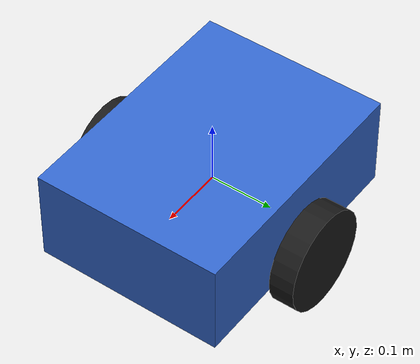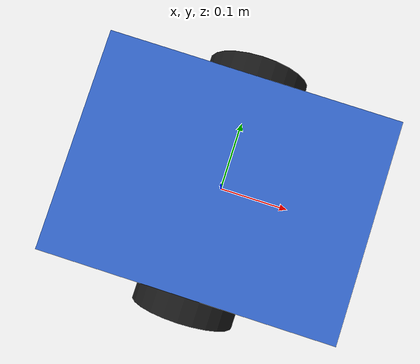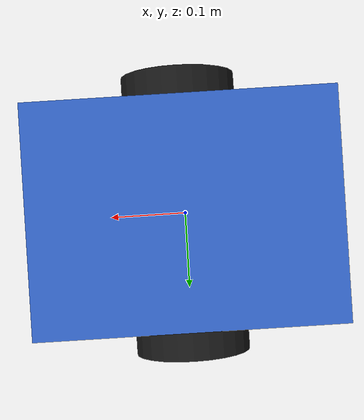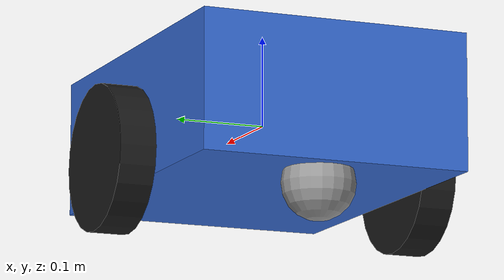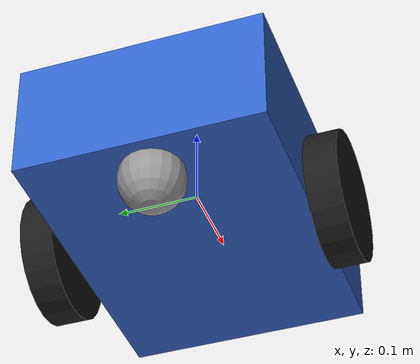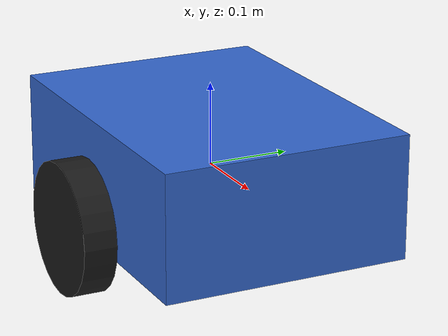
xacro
<?xml version="1.0"?>
<!-- URDF for Differential Robot -->
<robot name="diff_drive_bot" xmlns:xacro="http://www.ros.org/wiki/xacro">

<!-- Geometry and Constraints-->
<!-- Pi Constraint-->
<xacro:property name="pi_const" value="3.14159265"/>

<!-- Body dimensions -->
<xacro:property name="a" value="1.0"/>
<xacro:property name="b" value="1.0"/>
<xacro:property name="c" value="1.0"/>

<!-- Wheel and caster dimensions-->
<!-- Wheel and caster radius-->
<xacro:property name="r" value="0.15"/>
<!-- Wheel width-->
<xacro:property name="d" value="0.1"/>

<xacro:property name="s1" value="${b/2+r}"/>
<xacro:property name="s2" value="${2*r}"/>
<xacro:property name="s3" value="${2*r}"/>
<xacro:property name="s4" value="${c/2+d/2}"/>

<!-- Mass and inertia -->

<!-- Material density -->

  <!-- Base Link (Robot Chassis Center) -->
  <link name="base_link">
    <visual>
      <geometry>
        <box size="0.4 0.3 0.15"/>
      </geometry>
      <material name="chassis_color">
        <color rgba="0.2 0.4 0.8 1.0"/>
      </material>
    </visual>
    <collision>
      <geometry>
        <box size="0.4 0.3 0.15"/>
      </geometry>
    </collision>
    <inertial>
      <mass value="5.0"/>
      <inertia ixx="0.0468" ixy="0.0" ixz="0.0" iyy="0.0729" iyz="0.0" izz="0.1041"/>
    </inertial>
  </link>

  <!-- Left Wheel Link -->
  <link name="left_wheel">
    <visual>
      <geometry>
        <cylinder length="0.04" radius="0.08"/>
      </geometry>
      <material name="wheel_color">
        <color rgba="0.1 0.1 0.1 1.0"/>
      </material>
    </visual>
    <collision>
      <geometry>
        <cylinder length="0.04" radius="0.08"/>
      </geometry>
    </collision>
    <inertial>
      <mass value="0.5"/>
      <inertia ixx="0.00086" ixy="0.0" ixz="0.0" iyy="0.00086" iyz="0.0" izz="0.0016"/>
    </inertial>
  </link>

  <!-- Left Wheel Joint -->
  <joint name="left_wheel_joint" type="continuous">
    <parent link="base_link"/>
    <child link="left_wheel"/>
    <origin xyz="0.0 0.175 -0.05" rpy="-1.5708 0 0"/>
    <axis xyz="0 0 1"/>
  </joint>

  <!-- Right Wheel Link -->
  <link name="right_wheel">
    <visual>
      <geometry>
        <cylinder length="0.04" radius="0.08"/>
      </geometry>
      <material name="wheel_color"/>
    </visual>
    <collision>
      <geometry>
        <cylinder length="0.04" radius="0.08"/>
      </geometry>
    </collision>
    <inertial>
      <mass value="0.5"/>
      <inertia ixx="0.00086" ixy="0.0" ixz="0.0" iyy="0.00086" iyz="0.0" izz="0.0016"/>
    </inertial>
  </link>

  <!-- Right Wheel Joint -->
  <joint name="right_wheel_joint" type="continuous">
    <parent link="base_link"/>
    <child link="right_wheel"/>
    <origin xyz="0.0 -0.175 -0.05" rpy="-1.5708 0 0"/>
    <axis xyz="0 0 1"/>
  </joint>

  <!-- Rear Caster Wheel Link -->
  <link name="caster_wheel">
    <visual>
      <geometry>
        <sphere radius="0.04"/>
      </geometry>
      <material name="caster_color">
        <color rgba="0.6 0.6 0.6 1.0"/>
      </material>
    </visual>
    <collision>
      <geometry>
        <sphere radius="0.04"/>
      </geometry>
    </collision>
    <inertial>
      <mass value="0.2"/>
      <inertia ixx="0.000128" ixy="0.0" ixz="0.0" iyy="0.000128" iyz="0.0" izz="0.000128"/>
    </inertial>
  </link>

  <!-- Rear Caster Wheel Joint -->
  <joint name="caster_wheel_joint" type="fixed">
    <parent link="base_link"/>
    <child link="caster_wheel"/>
    <origin xyz="-0.15 0.0 -0.09" rpy="0 0 0"/>
  </joint>

</robot>
